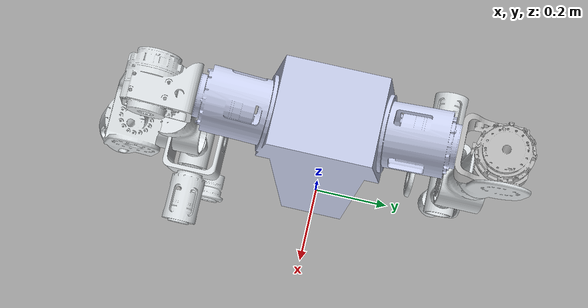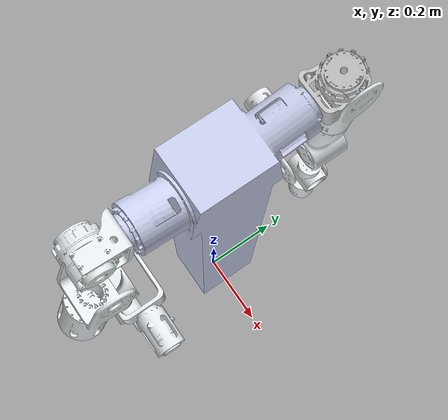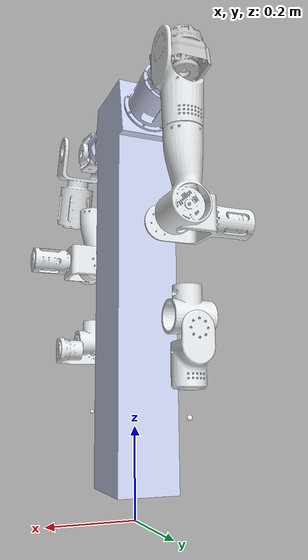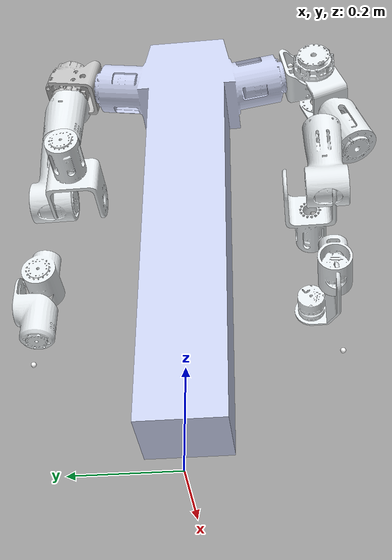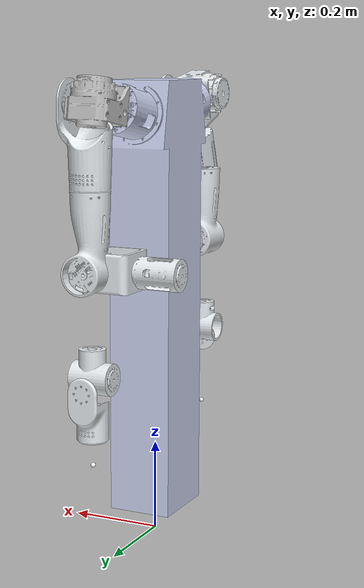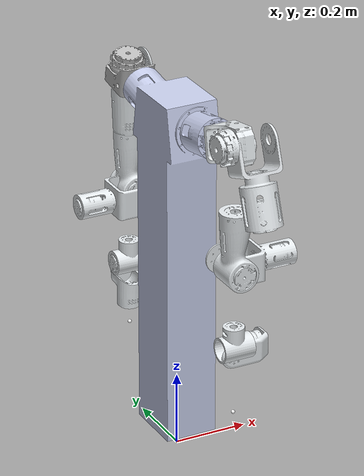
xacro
<?xml version="1.0"?>
<robot xmlns:xacro="http://www.ros.org/wiki/xacro" name="kaixuan1">
    <xacro:arg name="initial_positions_file" default="initial_positions.yaml" />

    <!-- Import the Xiaogong dual-arm robot model. -->
    <xacro:include filename="$(find xiaogong_kaixuan)/urdf/xiaogong-kaixuan.urdf" />

    <!-- Import control_xacro -->
    <xacro:include filename="kaixuan1.ros2_control.xacro" />

    <xacro:kaixuan1_ros2_control name="FakeSystem" initial_positions_file="$(arg initial_positions_file)"/>

</robot>

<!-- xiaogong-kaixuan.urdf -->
<robot name="xiaogong-kaixuan">
  <link name="world" />
  <link name="base_link">
    <inertial>
      <origin xyz="8.69791479723436E-05 -1.00630614952024E-11 -0.454814742530578" rpy="0 0 0" />
      <mass value="22.2097166637865" />
      <inertia ixx="1.6910180658421" ixy="3.69272938818943E-11" ixz="-2.66643401391567E-11" iyy="1.67605889385619" iyz="-5.56085993225209E-12" izz="0.0872412077441956" />
    </inertial>
    <visual>
      <origin xyz="0 0 0" rpy="0 0 0" />
      <geometry>
        <mesh filename="package://xiaogong_kaixuan/meshes/body/base_link.STL" />
      </geometry>
      <material name="">
        <color rgba="0.792156862745098 0.819607843137255 0.933333333333333 1" />
      </material>
    </visual>
    <collision>
      <origin xyz="0 0 0" rpy="0 0 0" />
      <geometry>
        <mesh filename="package://xiaogong_kaixuan/meshes/body/base_link.STL" />
      </geometry>
    </collision>
  </link>
  <joint name="world_to_base" type="fixed">
    <origin xyz="0 0 1" rpy="0 0 0" />
    <parent link="world" />
    <child link="base_link" />
  </joint>
  <link name="left_link1">
    <inertial>
      <origin xyz="-0.00205432160417818 -0.00141792269570674 0.0602306905316403" rpy="0 0 0" />
      <mass value="0.900353226708732" />
      <inertia ixx="0.0019798027282365" ixy="1.43975493456066E-06" ixz="3.1882808861573E-05" iyy="0.002180314391962" iyz="7.09441451513993E-06" izz="0.00155187680920738" />
    </inertial>
    <visual>
      <origin xyz="0 0 0" rpy="0 0 0" />
      <geometry>
        <mesh filename="package://xiaogong_kaixuan/meshes/arms/left_link1.STL" />
      </geometry>
      <material name="">
        <color rgba="0.752941176470588 0.752941176470588 0.752941176470588 1" />
      </material>
    </visual>
    <collision>
      <origin xyz="0 0 0" rpy="0 0 0" />
      <geometry>
        <mesh filename="package://xiaogong_kaixuan/meshes/arms/left_link1.STL" />
      </geometry>
    </collision>
  </link>
  <link name="left_link2">
    <inertial>
      <origin xyz="0.00169820513299768 -0.0850681024875293 -0.0186008951163804" rpy="0 0 0" />
      <mass value="0.604151914481596" />
      <inertia ixx="0.00246317220940863" ixy="-4.90627874413549E-05" ixz="-2.71338448701363E-05" iyy="0.00102580908234191" iyz="0.00054967481756561" izz="0.00227788065207115" />
    </inertial>
    <visual>
      <origin xyz="0 0 0" rpy="0 0 0" />
      <geometry>
        <mesh filename="package://xiaogong_kaixuan/meshes/arms/left_link2.STL" />
      </geometry>
      <material name="">
        <color rgba="0.898039215686275 0.917647058823529 0.929411764705882 1" />
      </material>
    </visual>
    <collision>
      <origin xyz="0 0 0" rpy="0 0 0" />
      <geometry>
        <mesh filename="package://xiaogong_kaixuan/meshes/arms/left_link2.STL" />
      </geometry>
    </collision>
  </link>
  <link name="left_link3">
    <inertial>
      <origin xyz="0.00356504255324686 -0.00110380082499956 0.132942517414466" rpy="0 0 0" />
      <mass value="0.826267709769756" />
      <inertia ixx="0.00290608913488917" ixy="2.04402106628454E-06" ixz="-7.74282491163121E-05" iyy="0.00287256432227637" iyz="6.74849387567589E-05" izz="0.00102563146498865" />
    </inertial>
    <visual>
      <origin xyz="0 0 0" rpy="0 0 0" />
      <geometry>
        <mesh filename="package://xiaogong_kaixuan/meshes/arms/left_link3.STL" />
      </geometry>
      <material name="">
        <color rgba="0.898039215686275 0.917647058823529 0.929411764705882 1" />
      </material>
    </visual>
    <collision>
      <origin xyz="0 0 0" rpy="0 0 0" />
      <geometry>
        <mesh filename="package://xiaogong_kaixuan/meshes/arms/left_link3.STL" />
      </geometry>
    </collision>
  </link>
  <link name="left_link4">
    <inertial>
      <origin xyz="0.0761613314223767 -0.00582770421059538 -0.00773383654141235" rpy="0 0 0" />
      <mass value="0.740152943453306" />
      <inertia ixx="0.00115914304450335" ixy="2.22685136560591E-05" ixz="1.10292661002893E-05" iyy="0.00168010097583795" iyz="1.59324000795062E-07" izz="0.00120594399270672" />
    </inertial>
    <visual>
      <origin xyz="0 0 0" rpy="0 0 0" />
      <geometry>
        <mesh filename="package://xiaogong_kaixuan/meshes/arms/left_link4.STL" />
      </geometry>
      <material name="">
        <color rgba="0.898039215686275 0.917647058823529 0.929411764705882 1" />
      </material>
    </visual>
    <collision>
      <origin xyz="0 0 0" rpy="0 0 0" />
      <geometry>
        <mesh filename="package://xiaogong_kaixuan/meshes/arms/left_link4.STL" />
      </geometry>
    </collision>
  </link>
  <link name="left_link5">
    <inertial>
      <origin xyz="-0.00452262190859698 4.78782853085419E-05 0.0693942356786784" rpy="0 0 0" />
      <mass value="0.342089785077591" />
      <inertia ixx="0.000414342797863252" ixy="-4.20833306318144E-07" ixz="-6.8594691666444E-06" iyy="0.000400092643924616" iyz="-4.2224723583763E-07" izz="0.000298358665006876" />
    </inertial>
    <visual>
      <origin xyz="0 0 0" rpy="0 0 3.141592653589793" />
      <geometry>
        <mesh filename="package://xiaogong_kaixuan/meshes/arms/left_link5.STL" />
      </geometry>
      <material name="">
        <color rgba="0.898039215686275 0.917647058823529 0.929411764705882 1" />
      </material>
    </visual>
    <collision>
      <origin xyz="0 0 0" rpy="0 0 3.141592653589793" />
      <geometry>
        <mesh filename="package://xiaogong_kaixuan/meshes/arms/left_link5.STL" />
      </geometry>
    </collision>
  </link>
  <link name="left_link6">
    <inertial>
      <origin xyz="0.0539058287882931 6.81719958912502E-05 0.0130128701943977" rpy="0 0 0" />
      <mass value="0.369589460651425" />
      <inertia ixx="0.000409963019871473" ixy="2.58019083726218E-07" ixz="0.000166748959331073" iyy="0.000649906868832628" iyz="2.92154977696718E-07" izz="0.000567227820629346" />
    </inertial>
    <visual>
      <origin xyz="0 0 0" rpy="0 0 0" />
      <geometry>
        <mesh filename="package://xiaogong_kaixuan/meshes/arms/left_link6.STL" />
      </geometry>
      <material name="">
        <color rgba="0.898039215686275 0.917647058823529 0.929411764705882 1" />
      </material>
    </visual>
    <collision>
      <origin xyz="0 0 0" rpy="0 0 0" />
      <geometry>
        <mesh filename="package://xiaogong_kaixuan/meshes/arms/left_link6.STL" />
      </geometry>
    </collision>
  </link>
  <link name="left_link7">
    <inertial>
      <origin xyz="-9.9475983006414E-14 1.38777878078145E-17 0.0695499999999997" rpy="0 0 0" />
      <mass value="0.0005235987755983" />
      <inertia ixx="5.23598775598301E-09" ixy="3.48688191749923E-38" ixz="1.10202595389589E-38" iyy="5.23598775598301E-09" iyz="-1.10504790539786E-25" izz="5.23598775598301E-09" />
    </inertial>
    <visual>
      <origin xyz="0 0 0" rpy="0 0 0" />
      <geometry>
        <mesh filename="package://xiaogong_kaixuan/meshes/arms/left_link7.STL" />
      </geometry>
      <material name="">
        <color rgba="1 1 1 1" />
      </material>
    </visual>
    <collision>
      <origin xyz="0 0 0" rpy="0 0 0" />
      <geometry>
        <mesh filename="package://xiaogong_kaixuan/meshes/arms/left_link7.STL" />
      </geometry>
    </collision>
  </link>
  <link name="left_ee">
    <inertial>
      <origin xyz="0 0 0" rpy="0 0 0" />
      <mass value="0.0005235987755983" />
      <inertia ixx="5.23598775598301E-09" ixy="3.48688191749923E-38" ixz="1.10202595389589E-38" iyy="5.23598775598301E-09" iyz="-1.10504790539786E-25" izz="5.23598775598301E-09" />
    </inertial>
  </link>
  <joint name="left_joint1" type="revolute">
    <origin xyz="0 0.20995 -0.049457" rpy="0 -1.396300000000001 -1.570788980384691" />
    <parent link="base_link" />
    <child link="left_link1" />
    <axis xyz="0 0 1" />
    <limit lower="-3.14" upper="3.14" effort="0" velocity="0" />
  </joint>
  <joint name="left_joint2" type="revolute">
    <origin xyz="0 0 0.0727" rpy="1.57075465431388 1.39629999984693 -4.231507316454497e-05" />
    <parent link="left_link1" />
    <child link="left_link2" />
    <axis xyz="0 0 -1" />
    <limit lower="-3.14" upper="3.14" effort="0" velocity="0" />
  </joint>
  <joint name="left_joint3" type="revolute">
    <origin xyz="0 -0.1386 -0.0055244" rpy="1.570796326794897 0 0" />
    <parent link="left_link2" />
    <child link="left_link3" />
    <axis xyz="0 0 1" />
    <limit lower="-3.14" upper="3.14" effort="0" velocity="0" />
  </joint>
  <joint name="left_joint4" type="revolute">
    <origin xyz="0.00815 -0.003 0.19985" rpy="0 -1.570796326794896 3.141592653589793" />
    <parent link="left_link3" />
    <child link="left_link4" />
    <axis xyz="0 0 1" />
    <limit lower="-3.14" upper="3.14" effort="0" velocity="0" />
  </joint>
  <joint name="left_joint5" type="revolute">
    <origin xyz="0.15445 -0.005 -0.00815" rpy="0 -1.570796326794896 3.141592653589793" />
    <parent link="left_link4" />
    <child link="left_link5" />
    <axis xyz="0 0 1" />
    <limit lower="-3.141592653589793" upper="3.141592653589793" effort="0" velocity="0" />
  </joint>
  <joint name="left_joint6" type="revolute">
    <origin xyz="0 0 0.08405" rpy="0 -1.570796326794896 0" />
    <parent link="left_link5" />
    <child link="left_link6" />
    <axis xyz="0 0 1" />
    <limit lower="-3.14" upper="3.14" effort="0" velocity="0" />
  </joint>
  <joint name="left_joint7" type="revolute">
    <origin xyz="0.08945 0 0" rpy="0 1.5708 0" />
    <parent link="left_link6" />
    <child link="left_link7" />
    <axis xyz="0 0 1" />
    <limit lower="-3.14" upper="3.14" effort="0" velocity="0" />
  </joint>
  <joint name="left_ee" type="fixed">
    <origin xyz="0 0 0.06955" rpy="0 0 0" />
    <parent link="left_link7" />
    <child link="left_ee" />
    <axis xyz="0 0 0" />
  </joint>
  <link name="right_link1">
    <inertial>
      <origin xyz="-0.00233973676902388 0.00557394702329454 0.058498277014619" rpy="0 0 0" />
      <mass value="0.790522678844094" />
      <inertia ixx="0.0019059627634599" ixy="1.43977208278853E-06" ixz="3.18827837807906E-05" iyy="0.00202854916561761" iyz="7.09442913160826E-06" izz="0.00147113393544685" />
    </inertial>
    <visual>
      <origin xyz="0 0 0" rpy="0 0 0" />
      <geometry>
        <mesh filename="package://xiaogong_kaixuan/meshes/arms/right_link1.STL" />
      </geometry>
      <material name="">
        <color rgba="0.898039215686275 0.917647058823529 0.929411764705882 1" />
      </material>
    </visual>
    <collision>
      <origin xyz="0 0 0" rpy="0 0 0" />
      <geometry>
        <mesh filename="package://xiaogong_kaixuan/meshes/arms/right_link1.STL" />
      </geometry>
    </collision>
  </link>
  <link name="right_link2">
    <inertial>
      <origin xyz="-0.00269556026449437 -0.0935527894752916 0.0178408649970544" rpy="0 0 0" />
      <mass value="0.655022043397898" />
      <inertia ixx="0.00248110029710012" ixy="4.73346935553376E-05" ixz="-2.45747724466433E-05" iyy="0.00106947897483155" iyz="-0.000550773962144847" izz="0.00230769578980836" />
    </inertial>
    <visual>
      <origin xyz="0 0 0" rpy="0 0 0" />
      <geometry>
        <mesh filename="package://xiaogong_kaixuan/meshes/arms/right_link2.STL" />
      </geometry>
      <material name="">
        <color rgba="0.898039215686275 0.917647058823529 0.929411764705882 1" />
      </material>
    </visual>
    <collision>
      <origin xyz="0 0 0" rpy="0 0 0" />
      <geometry>
        <mesh filename="package://xiaogong_kaixuan/meshes/arms/right_link2.STL" />
      </geometry>
    </collision>
  </link>
  <link name="right_link3">
    <inertial>
      <origin xyz="-0.00410691660261506 0.00127364005788846 0.146814500245128" rpy="0 0 0" />
      <mass value="0.717498508661569" />
      <inertia ixx="0.00285607244046043" ixy="2.04396599055308E-06" ixz="7.74319001507057E-05" iyy="0.00282264254798835" iyz="-6.74909156435721E-05" izz="0.000929573909212603" />
    </inertial>
    <visual>
      <origin xyz="0 0 0" rpy="0 0 0" />
      <geometry>
        <mesh filename="package://xiaogong_kaixuan/meshes/arms/right_link3.STL" />
      </geometry>
      <material name="">
        <color rgba="0.898039215686275 0.917647058823529 0.929411764705882 1" />
      </material>
    </visual>
    <collision>
      <origin xyz="0 0 0" rpy="0 0 0" />
      <geometry>
        <mesh filename="package://xiaogong_kaixuan/meshes/arms/right_link3_collision_original.STL" />
      </geometry>
    </collision>
  </link>
  <link name="right_link4">
    <inertial>
      <origin xyz="0.0761613317842931 0.00582770443447263 0.00773383660963991" rpy="0 0 0" />
      <mass value="0.740152946333247" />
      <inertia ixx="0.00115914303011776" ixy="-2.22685140123259E-05" ixz="-1.10292662047883E-05" iyy="0.00168010095665981" iyz="1.59322185462316E-07" izz="0.00120594399758743" />
    </inertial>
    <visual>
      <origin xyz="0 0 0" rpy="0 0 0" />
      <geometry>
        <mesh filename="package://xiaogong_kaixuan/meshes/arms/right_link4.STL" />
      </geometry>
      <material name="">
        <color rgba="0.898039215686275 0.917647058823529 0.929411764705882 1" />
      </material>
    </visual>
    <collision>
      <origin xyz="0 0 0" rpy="0 0 0" />
      <geometry>
        <mesh filename="package://xiaogong_kaixuan/meshes/arms/right_link4.STL" />
      </geometry>
    </collision>
  </link>
  <link name="right_link5">
    <inertial>
      <origin xyz="0.00452262167011572 -4.78780778431082E-05 0.0693942350614427" rpy="0 0 0" />
      <mass value="0.342089789995011" />
      <inertia ixx="0.000414342800571156" ixy="-4.20832594398887E-07" ixz="6.85946987601414E-06" iyy="0.000400092644836652" iyz="4.22250698241597E-07" izz="0.000298358665421877" />
    </inertial>
    <visual>
      <origin xyz="0 0 0" rpy="0 0 3.141592653589793" />
      <geometry>
        <mesh filename="package://xiaogong_kaixuan/meshes/arms/right_link5.STL" />
      </geometry>
      <material name="">
        <color rgba="0.898039215686275 0.917647058823529 0.929411764705882 1" />
      </material>
    </visual>
    <collision>
      <origin xyz="0 0 0" rpy="0 0 3.141592653589793" />
      <geometry>
        <mesh filename="package://xiaogong_kaixuan/meshes/arms/right_link5.STL" />
      </geometry>
    </collision>
  </link>
  <link name="right_link6">
    <inertial>
      <origin xyz="0.0539058293197083 -6.81719601647035E-05 -0.0130128699898111" rpy="0 0 0" />
      <mass value="0.369589471145764" />
      <inertia ixx="0.000409963013693443" ixy="-2.5801951237503E-07" ixz="-0.000166748956653578" iyy="0.000649906864602189" iyz="2.92155011803076E-07" izz="0.000567227822557007" />
    </inertial>
    <visual>
      <origin xyz="0 0 0" rpy="0 0 0" />
      <geometry>
        <mesh filename="package://xiaogong_kaixuan/meshes/arms/right_link6.STL" />
      </geometry>
      <material name="">
        <color rgba="0.898039215686275 0.917647058823529 0.929411764705882 1" />
      </material>
    </visual>
    <collision>
      <origin xyz="0 0 0" rpy="0 0 0" />
      <geometry>
        <mesh filename="package://xiaogong_kaixuan/meshes/arms/right_link6.STL" />
      </geometry>
    </collision>
  </link>
  <link name="right_link7">
    <inertial>
      <origin xyz="9.9552310839357E-14 -4.16333634234434E-17 0.0695499999999997" rpy="0 0 0" />
      <mass value="0.0005235987755983" />
      <inertia ixx="5.23598775598301E-09" ixy="2.35098870164551E-38" ixz="3.34095588761524E-52" iyy="5.23598775598301E-09" iyz="-1.46936793852786E-39" izz="5.23598775598301E-09" />
    </inertial>
    <visual>
      <origin xyz="0 0 0" rpy="0 0 0" />
      <geometry>
        <mesh filename="package://xiaogong_kaixuan/meshes/arms/right_link7.STL" />
      </geometry>
      <material name="">
        <color rgba="1 1 1 1" />
      </material>
    </visual>
    <collision>
      <origin xyz="0 0 0" rpy="0 0 0" />
      <geometry>
        <mesh filename="package://xiaogong_kaixuan/meshes/arms/right_link7.STL" />
      </geometry>
    </collision>
  </link>
  <link name="right_ee">
    <inertial>
      <origin xyz="0 0 0" rpy="0 0 0" />
      <mass value="0.0005235987755983" />
      <inertia ixx="5.23598775598301E-09" ixy="2.35098870164551E-38" ixz="3.34549301337815E-52" iyy="5.23598775598301E-09" iyz="-1.47977117832701E-39" izz="5.23598775598301E-09" />
    </inertial>
  </link>
  <joint name="right_joint1" type="revolute">
    <origin xyz="0.010173 -0.20995 -0.049457" rpy="-7.771561172376096e-16 1.3963 -1.570792653589794" />
    <parent link="base_link" />
    <child link="right_link1" />
    <axis xyz="0 0 1" />
    <limit lower="-3.14" upper="3.14" effort="0" velocity="0" />
  </joint>
  <joint name="right_joint2" type="revolute">
    <origin xyz="0 0 0.0727" rpy="1.570796326717196 1.396267074800568 3.14158898030817" />
    <parent link="right_link1" />
    <child link="right_link2" />
    <axis xyz="0 0 1" />
    <limit lower="-3.14" upper="3.14" effort="0" velocity="0" />
  </joint>
  <joint name="right_joint3" type="revolute">
    <origin xyz="0 -0.1386 0.0055244" rpy="1.5708 0 0" />
    <parent link="right_link2" />
    <child link="right_link3" />
    <axis xyz="0 0 1" />
    <limit lower="-3.14" upper="3.14" effort="0" velocity="0" />
  </joint>
  <joint name="right_joint4" type="revolute">
    <origin xyz="-0.00815 0.003 0.19985" rpy="0 -1.5708 3.141592653589793" />
    <parent link="right_link3" />
    <child link="right_link4" />
    <axis xyz="0 0 1" />
    <limit lower="-3.14" upper="3.14" effort="0" velocity="0" />
  </joint>
  <joint name="right_joint5" type="revolute">
    <origin xyz="0.15445 0.005 0.00815" rpy="0 1.5708 0" />
    <parent link="right_link4" />
    <child link="right_link5" />
    <axis xyz="0 0 1" />
    <limit lower="-3.14" upper="3.14" effort="0" velocity="0" />
  </joint>
  <joint name="right_joint6" type="revolute">
    <origin xyz="0 0 0.08405" rpy="0 -1.5708 0" />
    <parent link="right_link5" />
    <child link="right_link6" />
    <axis xyz="0 0 1" />
    <limit lower="-3.14" upper="3.14" effort="0" velocity="0" />
  </joint>
  <joint name="right_joint7" type="revolute">
    <origin xyz="0.08945 0 0" rpy="0 1.5708 0" />
    <parent link="right_link6" />
    <child link="right_link7" />
    <axis xyz="0 0 1" />
    <limit lower="-3.14" upper="3.14" effort="0" velocity="0" />
  </joint>
  <joint name="right_ee" type="fixed">
    <origin xyz="0 0 0.06955" rpy="0 0 0" />
    <parent link="right_link7" />
    <child link="right_ee" />
    <axis xyz="0 0 0" />
  </joint>
</robot>
